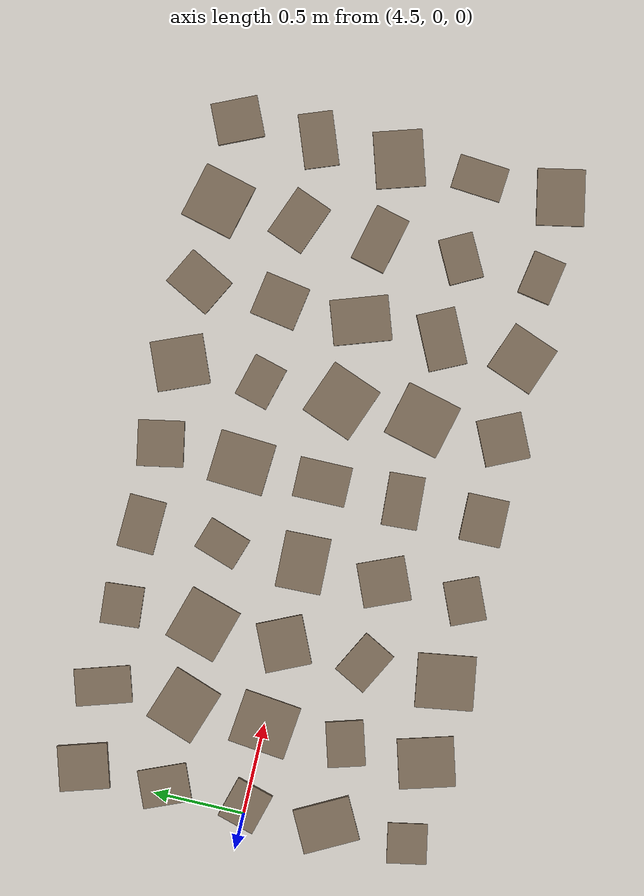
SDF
<sdf version="1.6">
 <world name="default">
  <include><uri>model://sun</uri></include>
  <model name="rough_patch_9_0">
   <static>true</static>
   <pose>4.550 -0.900 0.0027 0 0 0.1925</pose>
   <link name="link">
    <collision name="collision">
     <geometry><box><size>0.219 0.216 0.0054</size></box></geometry>
     <surface>
      <friction><ode><mu>0.8</mu><mu2>0.8</mu2><slip1>0.0</slip1><slip2>0.0</slip2></ode></friction>
      <contact>
       <ode><kp>1000000.0</kp><kd>100.0</kd><max_vel>0.01</max_vel><min_depth>0.001</min_depth></ode>
      </contact>
     </surface>
    </collision>
    <visual name="visual">
     <geometry><box><size>0.219 0.216 0.0054</size></box></geometry>
     <material><ambient>0.38 0.34 0.28 1</ambient><diffuse>0.50 0.43 0.35 1</diffuse></material>
    </visual>
   </link>
  </model>
  <model name="rough_patch_9_1">
   <static>true</static>
   <pose>4.550 -0.450 0.0097 0 0 0.4880</pose>
   <link name="link">
    <collision name="collision">
     <geometry><box><size>0.243 0.311 0.0193</size></box></geometry>
     <surface>
      <friction><ode><mu>0.8</mu><mu2>0.8</mu2><slip1>0.0</slip1><slip2>0.0</slip2></ode></friction>
      <contact>
       <ode><kp>1000000.0</kp><kd>100.0</kd><max_vel>0.01</max_vel><min_depth>0.001</min_depth></ode>
      </contact>
     </surface>
    </collision>
    <visual name="visual">
     <geometry><box><size>0.243 0.311 0.0193</size></box></geometry>
     <material><ambient>0.38 0.34 0.28 1</ambient><diffuse>0.50 0.43 0.35 1</diffuse></material>
    </visual>
   </link>
  </model>
  <model name="rough_patch_9_2">
   <static>true</static>
   <pose>4.550 0.000 0.0097 0 0 -0.2732</pose>
   <link name="link">
    <collision name="collision">
     <geometry><box><size>0.231 0.211 0.0193</size></box></geometry>
     <surface>
      <friction><ode><mu>0.8</mu><mu2>0.8</mu2><slip1>0.0</slip1><slip2>0.0</slip2></ode></friction>
      <contact>
       <ode><kp>1000000.0</kp><kd>100.0</kd><max_vel>0.01</max_vel><min_depth>0.001</min_depth></ode>
      </contact>
     </surface>
    </collision>
    <visual name="visual">
     <geometry><box><size>0.231 0.211 0.0193</size></box></geometry>
     <material><ambient>0.38 0.34 0.28 1</ambient><diffuse>0.50 0.43 0.35 1</diffuse></material>
    </visual>
   </link>
  </model>
  <model name="rough_patch_9_3">
   <static>true</static>
   <pose>4.550 0.450 0.0040 0 0 0.4003</pose>
   <link name="link">
    <collision name="collision">
     <geometry><box><size>0.209 0.267 0.0080</size></box></geometry>
     <surface>
      <friction><ode><mu>0.8</mu><mu2>0.8</mu2><slip1>0.0</slip1><slip2>0.0</slip2></ode></friction>
      <contact>
       <ode><kp>1000000.0</kp><kd>100.0</kd><max_vel>0.01</max_vel><min_depth>0.001</min_depth></ode>
      </contact>
     </surface>
    </collision>
    <visual name="visual">
     <geometry><box><size>0.209 0.267 0.0080</size></box></geometry>
     <material><ambient>0.38 0.34 0.28 1</ambient><diffuse>0.50 0.43 0.35 1</diffuse></material>
    </visual>
   </link>
  </model>
  <model name="rough_patch_9_4">
   <static>true</static>
   <pose>4.550 0.900 0.0088 0 0 0.2996</pose>
   <link name="link">
    <collision name="collision">
     <geometry><box><size>0.247 0.271 0.0176</size></box></geometry>
     <surface>
      <friction><ode><mu>0.8</mu><mu2>0.8</mu2><slip1>0.0</slip1><slip2>0.0</slip2></ode></friction>
      <contact>
       <ode><kp>1000000.0</kp><kd>100.0</kd><max_vel>0.01</max_vel><min_depth>0.001</min_depth></ode>
      </contact>
     </surface>
    </collision>
    <visual name="visual">
     <geometry><box><size>0.247 0.271 0.0176</size></box></geometry>
     <material><ambient>0.38 0.34 0.28 1</ambient><diffuse>0.50 0.43 0.35 1</diffuse></material>
    </visual>
   </link>
  </model>
  <model name="rough_patch_10_0">
   <static>true</static>
   <pose>5.000 -0.900 0.0031 0 0 0.2823</pose>
   <link name="link">
    <collision name="collision">
     <geometry><box><size>0.272 0.307 0.0063</size></box></geometry>
     <surface>
      <friction><ode><mu>0.8</mu><mu2>0.8</mu2><slip1>0.0</slip1><slip2>0.0</slip2></ode></friction>
      <contact>
       <ode><kp>1000000.0</kp><kd>100.0</kd><max_vel>0.01</max_vel><min_depth>0.001</min_depth></ode>
      </contact>
     </surface>
    </collision>
    <visual name="visual">
     <geometry><box><size>0.272 0.307 0.0063</size></box></geometry>
     <material><ambient>0.38 0.34 0.28 1</ambient><diffuse>0.50 0.43 0.35 1</diffuse></material>
    </visual>
   </link>
  </model>
  <model name="rough_patch_10_1">
   <static>true</static>
   <pose>5.000 -0.450 0.0081 0 0 0.2891</pose>
   <link name="link">
    <collision name="collision">
     <geometry><box><size>0.247 0.205 0.0163</size></box></geometry>
     <surface>
      <friction><ode><mu>0.8</mu><mu2>0.8</mu2><slip1>0.0</slip1><slip2>0.0</slip2></ode></friction>
      <contact>
       <ode><kp>1000000.0</kp><kd>100.0</kd><max_vel>0.01</max_vel><min_depth>0.001</min_depth></ode>
      </contact>
     </surface>
    </collision>
    <visual name="visual">
     <geometry><box><size>0.247 0.205 0.0163</size></box></geometry>
     <material><ambient>0.38 0.34 0.28 1</ambient><diffuse>0.50 0.43 0.35 1</diffuse></material>
    </visual>
   </link>
  </model>
  <model name="rough_patch_10_2">
   <static>true</static>
   <pose>5.000 0.000 0.0050 0 0 -0.1042</pose>
   <link name="link">
    <collision name="collision">
     <geometry><box><size>0.292 0.316 0.0100</size></box></geometry>
     <surface>
      <friction><ode><mu>0.8</mu><mu2>0.8</mu2><slip1>0.0</slip1><slip2>0.0</slip2></ode></friction>
      <contact>
       <ode><kp>1000000.0</kp><kd>100.0</kd><max_vel>0.01</max_vel><min_depth>0.001</min_depth></ode>
      </contact>
     </surface>
    </collision>
    <visual name="visual">
     <geometry><box><size>0.292 0.316 0.0100</size></box></geometry>
     <material><ambient>0.38 0.34 0.28 1</ambient><diffuse>0.50 0.43 0.35 1</diffuse></material>
    </visual>
   </link>
  </model>
  <model name="rough_patch_10_3">
   <static>true</static>
   <pose>5.000 0.450 0.0055 0 0 -0.3300</pose>
   <link name="link">
    <collision name="collision">
     <geometry><box><size>0.313 0.281 0.0110</size></box></geometry>
     <surface>
      <friction><ode><mu>0.8</mu><mu2>0.8</mu2><slip1>0.0</slip1><slip2>0.0</slip2></ode></friction>
      <contact>
       <ode><kp>1000000.0</kp><kd>100.0</kd><max_vel>0.01</max_vel><min_depth>0.001</min_depth></ode>
      </contact>
     </surface>
    </collision>
    <visual name="visual">
     <geometry><box><size>0.313 0.281 0.0110</size></box></geometry>
     <material><ambient>0.38 0.34 0.28 1</ambient><diffuse>0.50 0.43 0.35 1</diffuse></material>
    </visual>
   </link>
  </model>
  <model name="rough_patch_10_4">
   <static>true</static>
   <pose>5.000 0.900 0.0035 0 0 0.3065</pose>
   <link name="link">
    <collision name="collision">
     <geometry><box><size>0.201 0.307 0.0069</size></box></geometry>
     <surface>
      <friction><ode><mu>0.8</mu><mu2>0.8</mu2><slip1>0.0</slip1><slip2>0.0</slip2></ode></friction>
      <contact>
       <ode><kp>1000000.0</kp><kd>100.0</kd><max_vel>0.01</max_vel><min_depth>0.001</min_depth></ode>
      </contact>
     </surface>
    </collision>
    <visual name="visual">
     <geometry><box><size>0.201 0.307 0.0069</size></box></geometry>
     <material><ambient>0.38 0.34 0.28 1</ambient><diffuse>0.50 0.43 0.35 1</diffuse></material>
    </visual>
   </link>
  </model>
  <model name="rough_patch_11_0">
   <static>true</static>
   <pose>5.450 -0.900 0.0036 0 0 0.1573</pose>
   <link name="link">
    <collision name="collision">
     <geometry><box><size>0.296 0.317 0.0072</size></box></geometry>
     <surface>
      <friction><ode><mu>0.8</mu><mu2>0.8</mu2><slip1>0.0</slip1><slip2>0.0</slip2></ode></friction>
      <contact>
       <ode><kp>1000000.0</kp><kd>100.0</kd><max_vel>0.01</max_vel><min_depth>0.001</min_depth></ode>
      </contact>
     </surface>
    </collision>
    <visual name="visual">
     <geometry><box><size>0.296 0.317 0.0072</size></box></geometry>
     <material><ambient>0.38 0.34 0.28 1</ambient><diffuse>0.50 0.43 0.35 1</diffuse></material>
    </visual>
   </link>
  </model>
  <model name="rough_patch_11_1">
   <static>true</static>
   <pose>5.450 -0.450 0.0051 0 0 -0.4858</pose>
   <link name="link">
    <collision name="collision">
     <geometry><box><size>0.257 0.198 0.0103</size></box></geometry>
     <surface>
      <friction><ode><mu>0.8</mu><mu2>0.8</mu2><slip1>0.0</slip1><slip2>0.0</slip2></ode></friction>
      <contact>
       <ode><kp>1000000.0</kp><kd>100.0</kd><max_vel>0.01</max_vel><min_depth>0.001</min_depth></ode>
      </contact>
     </surface>
    </collision>
    <visual name="visual">
     <geometry><box><size>0.257 0.198 0.0103</size></box></geometry>
     <material><ambient>0.38 0.34 0.28 1</ambient><diffuse>0.50 0.43 0.35 1</diffuse></material>
    </visual>
   </link>
  </model>
  <model name="rough_patch_11_2">
   <static>true</static>
   <pose>5.450 0.000 0.0098 0 0 0.4336</pose>
   <link name="link">
    <collision name="collision">
     <geometry><box><size>0.271 0.254 0.0196</size></box></geometry>
     <surface>
      <friction><ode><mu>0.8</mu><mu2>0.8</mu2><slip1>0.0</slip1><slip2>0.0</slip2></ode></friction>
      <contact>
       <ode><kp>1000000.0</kp><kd>100.0</kd><max_vel>0.01</max_vel><min_depth>0.001</min_depth></ode>
      </contact>
     </surface>
    </collision>
    <visual name="visual">
     <geometry><box><size>0.271 0.254 0.0196</size></box></geometry>
     <material><ambient>0.38 0.34 0.28 1</ambient><diffuse>0.50 0.43 0.35 1</diffuse></material>
    </visual>
   </link>
  </model>
  <model name="rough_patch_11_3">
   <static>true</static>
   <pose>5.450 0.450 0.0058 0 0 -0.2890</pose>
   <link name="link">
    <collision name="collision">
     <geometry><box><size>0.302 0.296 0.0115</size></box></geometry>
     <surface>
      <friction><ode><mu>0.8</mu><mu2>0.8</mu2><slip1>0.0</slip1><slip2>0.0</slip2></ode></friction>
      <contact>
       <ode><kp>1000000.0</kp><kd>100.0</kd><max_vel>0.01</max_vel><min_depth>0.001</min_depth></ode>
      </contact>
     </surface>
    </collision>
    <visual name="visual">
     <geometry><box><size>0.302 0.296 0.0115</size></box></geometry>
     <material><ambient>0.38 0.34 0.28 1</ambient><diffuse>0.50 0.43 0.35 1</diffuse></material>
    </visual>
   </link>
  </model>
  <model name="rough_patch_11_4">
   <static>true</static>
   <pose>5.450 0.900 0.0044 0 0 0.0864</pose>
   <link name="link">
    <collision name="collision">
     <geometry><box><size>0.221 0.214 0.0088</size></box></geometry>
     <surface>
      <friction><ode><mu>0.8</mu><mu2>0.8</mu2><slip1>0.0</slip1><slip2>0.0</slip2></ode></friction>
      <contact>
       <ode><kp>1000000.0</kp><kd>100.0</kd><max_vel>0.01</max_vel><min_depth>0.001</min_depth></ode>
      </contact>
     </surface>
    </collision>
    <visual name="visual">
     <geometry><box><size>0.221 0.214 0.0088</size></box></geometry>
     <material><ambient>0.38 0.34 0.28 1</ambient><diffuse>0.50 0.43 0.35 1</diffuse></material>
    </visual>
   </link>
  </model>
  <model name="rough_patch_12_0">
   <static>true</static>
   <pose>5.900 -0.900 0.0044 0 0 0.4100</pose>
   <link name="link">
    <collision name="collision">
     <geometry><box><size>0.239 0.198 0.0089</size></box></geometry>
     <surface>
      <friction><ode><mu>0.8</mu><mu2>0.8</mu2><slip1>0.0</slip1><slip2>0.0</slip2></ode></friction>
      <contact>
       <ode><kp>1000000.0</kp><kd>100.0</kd><max_vel>0.01</max_vel><min_depth>0.001</min_depth></ode>
      </contact>
     </surface>
    </collision>
    <visual name="visual">
     <geometry><box><size>0.239 0.198 0.0089</size></box></geometry>
     <material><ambient>0.38 0.34 0.28 1</ambient><diffuse>0.50 0.43 0.35 1</diffuse></material>
    </visual>
   </link>
  </model>
  <model name="rough_patch_12_1">
   <static>true</static>
   <pose>5.900 -0.450 0.0052 0 0 0.4043</pose>
   <link name="link">
    <collision name="collision">
     <geometry><box><size>0.244 0.262 0.0103</size></box></geometry>
     <surface>
      <friction><ode><mu>0.8</mu><mu2>0.8</mu2><slip1>0.0</slip1><slip2>0.0</slip2></ode></friction>
      <contact>
       <ode><kp>1000000.0</kp><kd>100.0</kd><max_vel>0.01</max_vel><min_depth>0.001</min_depth></ode>
      </contact>
     </surface>
    </collision>
    <visual name="visual">
     <geometry><box><size>0.244 0.262 0.0103</size></box></geometry>
     <material><ambient>0.38 0.34 0.28 1</ambient><diffuse>0.50 0.43 0.35 1</diffuse></material>
    </visual>
   </link>
  </model>
  <model name="rough_patch_12_2">
   <static>true</static>
   <pose>5.900 0.000 0.0057 0 0 0.0318</pose>
   <link name="link">
    <collision name="collision">
     <geometry><box><size>0.308 0.250 0.0113</size></box></geometry>
     <surface>
      <friction><ode><mu>0.8</mu><mu2>0.8</mu2><slip1>0.0</slip1><slip2>0.0</slip2></ode></friction>
      <contact>
       <ode><kp>1000000.0</kp><kd>100.0</kd><max_vel>0.01</max_vel><min_depth>0.001</min_depth></ode>
      </contact>
     </surface>
    </collision>
    <visual name="visual">
     <geometry><box><size>0.308 0.250 0.0113</size></box></geometry>
     <material><ambient>0.38 0.34 0.28 1</ambient><diffuse>0.50 0.43 0.35 1</diffuse></material>
    </visual>
   </link>
  </model>
  <model name="rough_patch_12_3">
   <static>true</static>
   <pose>5.900 0.450 0.0064 0 0 -0.3169</pose>
   <link name="link">
    <collision name="collision">
     <geometry><box><size>0.183 0.242 0.0129</size></box></geometry>
     <surface>
      <friction><ode><mu>0.8</mu><mu2>0.8</mu2><slip1>0.0</slip1><slip2>0.0</slip2></ode></friction>
      <contact>
       <ode><kp>1000000.0</kp><kd>100.0</kd><max_vel>0.01</max_vel><min_depth>0.001</min_depth></ode>
      </contact>
     </surface>
    </collision>
    <visual name="visual">
     <geometry><box><size>0.183 0.242 0.0129</size></box></geometry>
     <material><ambient>0.38 0.34 0.28 1</ambient><diffuse>0.50 0.43 0.35 1</diffuse></material>
    </visual>
   </link>
  </model>
  <model name="rough_patch_12_4">
   <static>true</static>
   <pose>5.900 0.900 0.0025 0 0 -0.0265</pose>
   <link name="link">
    <collision name="collision">
     <geometry><box><size>0.292 0.204 0.0051</size></box></geometry>
     <surface>
      <friction><ode><mu>0.8</mu><mu2>0.8</mu2><slip1>0.0</slip1><slip2>0.0</slip2></ode></friction>
      <contact>
       <ode><kp>1000000.0</kp><kd>100.0</kd><max_vel>0.01</max_vel><min_depth>0.001</min_depth></ode>
      </contact>
     </surface>
    </collision>
    <visual name="visual">
     <geometry><box><size>0.292 0.204 0.0051</size></box></geometry>
     <material><ambient>0.38 0.34 0.28 1</ambient><diffuse>0.50 0.43 0.35 1</diffuse></material>
    </visual>
   </link>
  </model>
  <model name="rough_patch_13_0">
   <static>true</static>
   <pose>6.350 -0.900 0.0079 0 0 0.0183</pose>
   <link name="link">
    <collision name="collision">
     <geometry><box><size>0.258 0.226 0.0159</size></box></geometry>
     <surface>
      <friction><ode><mu>0.8</mu><mu2>0.8</mu2><slip1>0.0</slip1><slip2>0.0</slip2></ode></friction>
      <contact>
       <ode><kp>1000000.0</kp><kd>100.0</kd><max_vel>0.01</max_vel><min_depth>0.001</min_depth></ode>
      </contact>
     </surface>
    </collision>
    <visual name="visual">
     <geometry><box><size>0.258 0.226 0.0159</size></box></geometry>
     <material><ambient>0.38 0.34 0.28 1</ambient><diffuse>0.50 0.43 0.35 1</diffuse></material>
    </visual>
   </link>
  </model>
  <model name="rough_patch_13_1">
   <static>true</static>
   <pose>6.350 -0.450 0.0067 0 0 0.0603</pose>
   <link name="link">
    <collision name="collision">
     <geometry><box><size>0.290 0.195 0.0133</size></box></geometry>
     <surface>
      <friction><ode><mu>0.8</mu><mu2>0.8</mu2><slip1>0.0</slip1><slip2>0.0</slip2></ode></friction>
      <contact>
       <ode><kp>1000000.0</kp><kd>100.0</kd><max_vel>0.01</max_vel><min_depth>0.001</min_depth></ode>
      </contact>
     </surface>
    </collision>
    <visual name="visual">
     <geometry><box><size>0.290 0.195 0.0133</size></box></geometry>
     <material><ambient>0.38 0.34 0.28 1</ambient><diffuse>0.50 0.43 0.35 1</diffuse></material>
    </visual>
   </link>
  </model>
  <model name="rough_patch_13_2">
   <static>true</static>
   <pose>6.350 0.000 0.0044 0 0 0.0077</pose>
   <link name="link">
    <collision name="collision">
     <geometry><box><size>0.219 0.288 0.0087</size></box></geometry>
     <surface>
      <friction><ode><mu>0.8</mu><mu2>0.8</mu2><slip1>0.0</slip1><slip2>0.0</slip2></ode></friction>
      <contact>
       <ode><kp>1000000.0</kp><kd>100.0</kd><max_vel>0.01</max_vel><min_depth>0.001</min_depth></ode>
      </contact>
     </surface>
    </collision>
    <visual name="visual">
     <geometry><box><size>0.219 0.288 0.0087</size></box></geometry>
     <material><ambient>0.38 0.34 0.28 1</ambient><diffuse>0.50 0.43 0.35 1</diffuse></material>
    </visual>
   </link>
  </model>
  <model name="rough_patch_13_3">
   <static>true</static>
   <pose>6.350 0.450 0.0067 0 0 -0.0568</pose>
   <link name="link">
    <collision name="collision">
     <geometry><box><size>0.286 0.308 0.0134</size></box></geometry>
     <surface>
      <friction><ode><mu>0.8</mu><mu2>0.8</mu2><slip1>0.0</slip1><slip2>0.0</slip2></ode></friction>
      <contact>
       <ode><kp>1000000.0</kp><kd>100.0</kd><max_vel>0.01</max_vel><min_depth>0.001</min_depth></ode>
      </contact>
     </surface>
    </collision>
    <visual name="visual">
     <geometry><box><size>0.286 0.308 0.0134</size></box></geometry>
     <material><ambient>0.38 0.34 0.28 1</ambient><diffuse>0.50 0.43 0.35 1</diffuse></material>
    </visual>
   </link>
  </model>
  <model name="rough_patch_13_4">
   <static>true</static>
   <pose>6.350 0.900 0.0071 0 0 0.1927</pose>
   <link name="link">
    <collision name="collision">
     <geometry><box><size>0.251 0.252 0.0142</size></box></geometry>
     <surface>
      <friction><ode><mu>0.8</mu><mu2>0.8</mu2><slip1>0.0</slip1><slip2>0.0</slip2></ode></friction>
      <contact>
       <ode><kp>1000000.0</kp><kd>100.0</kd><max_vel>0.01</max_vel><min_depth>0.001</min_depth></ode>
      </contact>
     </surface>
    </collision>
    <visual name="visual">
     <geometry><box><size>0.251 0.252 0.0142</size></box></geometry>
     <material><ambient>0.38 0.34 0.28 1</ambient><diffuse>0.50 0.43 0.35 1</diffuse></material>
    </visual>
   </link>
  </model>
  <model name="rough_patch_14_0">
   <static>true</static>
   <pose>6.800 -0.900 0.0059 0 0 0.4415</pose>
   <link name="link">
    <collision name="collision">
     <geometry><box><size>0.255 0.247 0.0118</size></box></geometry>
     <surface>
      <friction><ode><mu>0.8</mu><mu2>0.8</mu2><slip1>0.0</slip1><slip2>0.0</slip2></ode></friction>
      <contact>
       <ode><kp>1000000.0</kp><kd>100.0</kd><max_vel>0.01</max_vel><min_depth>0.001</min_depth></ode>
      </contact>
     </surface>
    </collision>
    <visual name="visual">
     <geometry><box><size>0.255 0.247 0.0118</size></box></geometry>
     <material><ambient>0.38 0.34 0.28 1</ambient><diffuse>0.50 0.43 0.35 1</diffuse></material>
    </visual>
   </link>
  </model>
  <model name="rough_patch_14_1">
   <static>true</static>
   <pose>6.800 -0.450 0.0077 0 0 -0.2404</pose>
   <link name="link">
    <collision name="collision">
     <geometry><box><size>0.303 0.312 0.0155</size></box></geometry>
     <surface>
      <friction><ode><mu>0.8</mu><mu2>0.8</mu2><slip1>0.0</slip1><slip2>0.0</slip2></ode></friction>
      <contact>
       <ode><kp>1000000.0</kp><kd>100.0</kd><max_vel>0.01</max_vel><min_depth>0.001</min_depth></ode>
      </contact>
     </surface>
    </collision>
    <visual name="visual">
     <geometry><box><size>0.303 0.312 0.0155</size></box></geometry>
     <material><ambient>0.38 0.34 0.28 1</ambient><diffuse>0.50 0.43 0.35 1</diffuse></material>
    </visual>
   </link>
  </model>
  <model name="rough_patch_14_2">
   <static>true</static>
   <pose>6.800 0.000 0.0067 0 0 -0.3629</pose>
   <link name="link">
    <collision name="collision">
     <geometry><box><size>0.312 0.298 0.0134</size></box></geometry>
     <surface>
      <friction><ode><mu>0.8</mu><mu2>0.8</mu2><slip1>0.0</slip1><slip2>0.0</slip2></ode></friction>
      <contact>
       <ode><kp>1000000.0</kp><kd>100.0</kd><max_vel>0.01</max_vel><min_depth>0.001</min_depth></ode>
      </contact>
     </surface>
    </collision>
    <visual name="visual">
     <geometry><box><size>0.312 0.298 0.0134</size></box></geometry>
     <material><ambient>0.38 0.34 0.28 1</ambient><diffuse>0.50 0.43 0.35 1</diffuse></material>
    </visual>
   </link>
  </model>
  <model name="rough_patch_14_3">
   <static>true</static>
   <pose>6.800 0.450 0.0034 0 0 -0.2594</pose>
   <link name="link">
    <collision name="collision">
     <geometry><box><size>0.242 0.190 0.0068</size></box></geometry>
     <surface>
      <friction><ode><mu>0.8</mu><mu2>0.8</mu2><slip1>0.0</slip1><slip2>0.0</slip2></ode></friction>
      <contact>
       <ode><kp>1000000.0</kp><kd>100.0</kd><max_vel>0.01</max_vel><min_depth>0.001</min_depth></ode>
      </contact>
     </surface>
    </collision>
    <visual name="visual">
     <geometry><box><size>0.242 0.190 0.0068</size></box></geometry>
     <material><ambient>0.38 0.34 0.28 1</ambient><diffuse>0.50 0.43 0.35 1</diffuse></material>
    </visual>
   </link>
  </model>
  <model name="rough_patch_14_4">
   <static>true</static>
   <pose>6.800 0.900 0.0030 0 0 0.3970</pose>
   <link name="link">
    <collision name="collision">
     <geometry><box><size>0.274 0.290 0.0061</size></box></geometry>
     <surface>
      <friction><ode><mu>0.8</mu><mu2>0.8</mu2><slip1>0.0</slip1><slip2>0.0</slip2></ode></friction>
      <contact>
       <ode><kp>1000000.0</kp><kd>100.0</kd><max_vel>0.01</max_vel><min_depth>0.001</min_depth></ode>
      </contact>
     </surface>
    </collision>
    <visual name="visual">
     <geometry><box><size>0.274 0.290 0.0061</size></box></geometry>
     <material><ambient>0.38 0.34 0.28 1</ambient><diffuse>0.50 0.43 0.35 1</diffuse></material>
    </visual>
   </link>
  </model>
  <model name="rough_patch_15_0">
   <static>true</static>
   <pose>7.250 -0.900 0.0037 0 0 -0.3570</pose>
   <link name="link">
    <collision name="collision">
     <geometry><box><size>0.280 0.272 0.0073</size></box></geometry>
     <surface>
      <friction><ode><mu>0.8</mu><mu2>0.8</mu2><slip1>0.0</slip1><slip2>0.0</slip2></ode></friction>
      <contact>
       <ode><kp>1000000.0</kp><kd>100.0</kd><max_vel>0.01</max_vel><min_depth>0.001</min_depth></ode>
      </contact>
     </surface>
    </collision>
    <visual name="visual">
     <geometry><box><size>0.280 0.272 0.0073</size></box></geometry>
     <material><ambient>0.38 0.34 0.28 1</ambient><diffuse>0.50 0.43 0.35 1</diffuse></material>
    </visual>
   </link>
  </model>
  <model name="rough_patch_15_1">
   <static>true</static>
   <pose>7.250 -0.450 0.0091 0 0 0.4525</pose>
   <link name="link">
    <collision name="collision">
     <geometry><box><size>0.315 0.211 0.0182</size></box></geometry>
     <surface>
      <friction><ode><mu>0.8</mu><mu2>0.8</mu2><slip1>0.0</slip1><slip2>0.0</slip2></ode></friction>
      <contact>
       <ode><kp>1000000.0</kp><kd>100.0</kd><max_vel>0.01</max_vel><min_depth>0.001</min_depth></ode>
      </contact>
     </surface>
    </collision>
    <visual name="visual">
     <geometry><box><size>0.315 0.211 0.0182</size></box></geometry>
     <material><ambient>0.38 0.34 0.28 1</ambient><diffuse>0.50 0.43 0.35 1</diffuse></material>
    </visual>
   </link>
  </model>
  <model name="rough_patch_15_2">
   <static>true</static>
   <pose>7.250 0.000 0.0055 0 0 0.3324</pose>
   <link name="link">
    <collision name="collision">
     <geometry><box><size>0.248 0.319 0.0110</size></box></geometry>
     <surface>
      <friction><ode><mu>0.8</mu><mu2>0.8</mu2><slip1>0.0</slip1><slip2>0.0</slip2></ode></friction>
      <contact>
       <ode><kp>1000000.0</kp><kd>100.0</kd><max_vel>0.01</max_vel><min_depth>0.001</min_depth></ode>
      </contact>
     </surface>
    </collision>
    <visual name="visual">
     <geometry><box><size>0.248 0.319 0.0110</size></box></geometry>
     <material><ambient>0.38 0.34 0.28 1</ambient><diffuse>0.50 0.43 0.35 1</diffuse></material>
    </visual>
   </link>
  </model>
  <model name="rough_patch_15_3">
   <static>true</static>
   <pose>7.250 0.450 0.0037 0 0 -0.1609</pose>
   <link name="link">
    <collision name="collision">
     <geometry><box><size>0.240 0.252 0.0074</size></box></geometry>
     <surface>
      <friction><ode><mu>0.8</mu><mu2>0.8</mu2><slip1>0.0</slip1><slip2>0.0</slip2></ode></friction>
      <contact>
       <ode><kp>1000000.0</kp><kd>100.0</kd><max_vel>0.01</max_vel><min_depth>0.001</min_depth></ode>
      </contact>
     </surface>
    </collision>
    <visual name="visual">
     <geometry><box><size>0.240 0.252 0.0074</size></box></geometry>
     <material><ambient>0.38 0.34 0.28 1</ambient><diffuse>0.50 0.43 0.35 1</diffuse></material>
    </visual>
   </link>
  </model>
  <model name="rough_patch_15_4">
   <static>true</static>
   <pose>7.250 0.900 0.0040 0 0 -0.4805</pose>
   <link name="link">
    <collision name="collision">
     <geometry><box><size>0.225 0.281 0.0079</size></box></geometry>
     <surface>
      <friction><ode><mu>0.8</mu><mu2>0.8</mu2><slip1>0.0</slip1><slip2>0.0</slip2></ode></friction>
      <contact>
       <ode><kp>1000000.0</kp><kd>100.0</kd><max_vel>0.01</max_vel><min_depth>0.001</min_depth></ode>
      </contact>
     </surface>
    </collision>
    <visual name="visual">
     <geometry><box><size>0.225 0.281 0.0079</size></box></geometry>
     <material><ambient>0.38 0.34 0.28 1</ambient><diffuse>0.50 0.43 0.35 1</diffuse></material>
    </visual>
   </link>
  </model>
  <model name="rough_patch_16_0">
   <static>true</static>
   <pose>7.700 -0.900 0.0067 0 0 -0.1685</pose>
   <link name="link">
    <collision name="collision">
     <geometry><box><size>0.242 0.183 0.0133</size></box></geometry>
     <surface>
      <friction><ode><mu>0.8</mu><mu2>0.8</mu2><slip1>0.0</slip1><slip2>0.0</slip2></ode></friction>
      <contact>
       <ode><kp>1000000.0</kp><kd>100.0</kd><max_vel>0.01</max_vel><min_depth>0.001</min_depth></ode>
      </contact>
     </surface>
    </collision>
    <visual name="visual">
     <geometry><box><size>0.242 0.183 0.0133</size></box></geometry>
     <material><ambient>0.38 0.34 0.28 1</ambient><diffuse>0.50 0.43 0.35 1</diffuse></material>
    </visual>
   </link>
  </model>
  <model name="rough_patch_16_1">
   <static>true</static>
   <pose>7.700 -0.450 0.0072 0 0 0.4851</pose>
   <link name="link">
    <collision name="collision">
     <geometry><box><size>0.252 0.189 0.0144</size></box></geometry>
     <surface>
      <friction><ode><mu>0.8</mu><mu2>0.8</mu2><slip1>0.0</slip1><slip2>0.0</slip2></ode></friction>
      <contact>
       <ode><kp>1000000.0</kp><kd>100.0</kd><max_vel>0.01</max_vel><min_depth>0.001</min_depth></ode>
      </contact>
     </surface>
    </collision>
    <visual name="visual">
     <geometry><box><size>0.252 0.189 0.0144</size></box></geometry>
     <material><ambient>0.38 0.34 0.28 1</ambient><diffuse>0.50 0.43 0.35 1</diffuse></material>
    </visual>
   </link>
  </model>
  <model name="rough_patch_16_2">
   <static>true</static>
   <pose>7.700 0.000 0.0084 0 0 -0.2344</pose>
   <link name="link">
    <collision name="collision">
     <geometry><box><size>0.316 0.195 0.0168</size></box></geometry>
     <surface>
      <friction><ode><mu>0.8</mu><mu2>0.8</mu2><slip1>0.0</slip1><slip2>0.0</slip2></ode></friction>
      <contact>
       <ode><kp>1000000.0</kp><kd>100.0</kd><max_vel>0.01</max_vel><min_depth>0.001</min_depth></ode>
      </contact>
     </surface>
    </collision>
    <visual name="visual">
     <geometry><box><size>0.316 0.195 0.0168</size></box></geometry>
     <material><ambient>0.38 0.34 0.28 1</ambient><diffuse>0.50 0.43 0.35 1</diffuse></material>
    </visual>
   </link>
  </model>
  <model name="rough_patch_16_3">
   <static>true</static>
   <pose>7.700 0.450 0.0028 0 0 -0.3704</pose>
   <link name="link">
    <collision name="collision">
     <geometry><box><size>0.289 0.218 0.0056</size></box></geometry>
     <surface>
      <friction><ode><mu>0.8</mu><mu2>0.8</mu2><slip1>0.0</slip1><slip2>0.0</slip2></ode></friction>
      <contact>
       <ode><kp>1000000.0</kp><kd>100.0</kd><max_vel>0.01</max_vel><min_depth>0.001</min_depth></ode>
      </contact>
     </surface>
    </collision>
    <visual name="visual">
     <geometry><box><size>0.289 0.218 0.0056</size></box></geometry>
     <material><ambient>0.38 0.34 0.28 1</ambient><diffuse>0.50 0.43 0.35 1</diffuse></material>
    </visual>
   </link>
  </model>
  <model name="rough_patch_16_4">
   <static>true</static>
   <pose>7.700 0.900 0.0057 0 0 -0.2414</pose>
   <link name="link">
    <collision name="collision">
     <geometry><box><size>0.308 0.295 0.0113</size></box></geometry>
     <surface>
      <friction><ode><mu>0.8</mu><mu2>0.8</mu2><slip1>0.0</slip1><slip2>0.0</slip2></ode></friction>
      <contact>
       <ode><kp>1000000.0</kp><kd>100.0</kd><max_vel>0.01</max_vel><min_depth>0.001</min_depth></ode>
      </contact>
     </surface>
    </collision>
    <visual name="visual">
     <geometry><box><size>0.308 0.295 0.0113</size></box></geometry>
     <material><ambient>0.38 0.34 0.28 1</ambient><diffuse>0.50 0.43 0.35 1</diffuse></material>
    </visual>
   </link>
  </model>
  <model name="rough_patch_17_0">
   <static>true</static>
   <pose>8.150 -0.900 0.0036 0 0 0.2004</pose>
   <link name="link">
    <collision name="collision">
     <geometry><box><size>0.309 0.260 0.0072</size></box></geometry>
     <surface>
      <friction><ode><mu>0.8</mu><mu2>0.8</mu2><slip1>0.0</slip1><slip2>0.0</slip2></ode></friction>
      <contact>
       <ode><kp>1000000.0</kp><kd>100.0</kd><max_vel>0.01</max_vel><min_depth>0.001</min_depth></ode>
      </contact>
     </surface>
    </collision>
    <visual name="visual">
     <geometry><box><size>0.309 0.260 0.0072</size></box></geometry>
     <material><ambient>0.38 0.34 0.28 1</ambient><diffuse>0.50 0.43 0.35 1</diffuse></material>
    </visual>
   </link>
  </model>
  <model name="rough_patch_17_1">
   <static>true</static>
   <pose>8.150 -0.450 0.0032 0 0 -0.0747</pose>
   <link name="link">
    <collision name="collision">
     <geometry><box><size>0.188 0.276 0.0063</size></box></geometry>
     <surface>
      <friction><ode><mu>0.8</mu><mu2>0.8</mu2><slip1>0.0</slip1><slip2>0.0</slip2></ode></friction>
      <contact>
       <ode><kp>1000000.0</kp><kd>100.0</kd><max_vel>0.01</max_vel><min_depth>0.001</min_depth></ode>
      </contact>
     </surface>
    </collision>
    <visual name="visual">
     <geometry><box><size>0.188 0.276 0.0063</size></box></geometry>
     <material><ambient>0.38 0.34 0.28 1</ambient><diffuse>0.50 0.43 0.35 1</diffuse></material>
    </visual>
   </link>
  </model>
  <model name="rough_patch_17_2">
   <static>true</static>
   <pose>8.150 0.000 0.0030 0 0 0.3016</pose>
   <link name="link">
    <collision name="collision">
     <geometry><box><size>0.311 0.269 0.0061</size></box></geometry>
     <surface>
      <friction><ode><mu>0.8</mu><mu2>0.8</mu2><slip1>0.0</slip1><slip2>0.0</slip2></ode></friction>
      <contact>
       <ode><kp>1000000.0</kp><kd>100.0</kd><max_vel>0.01</max_vel><min_depth>0.001</min_depth></ode>
      </contact>
     </surface>
    </collision>
    <visual name="visual">
     <geometry><box><size>0.311 0.269 0.0061</size></box></geometry>
     <material><ambient>0.38 0.34 0.28 1</ambient><diffuse>0.50 0.43 0.35 1</diffuse></material>
    </visual>
   </link>
  </model>
  <model name="rough_patch_17_3">
   <static>true</static>
   <pose>8.150 0.450 0.0031 0 0 0.3628</pose>
   <link name="link">
    <collision name="collision">
     <geometry><box><size>0.300 0.189 0.0063</size></box></geometry>
     <surface>
      <friction><ode><mu>0.8</mu><mu2>0.8</mu2><slip1>0.0</slip1><slip2>0.0</slip2></ode></friction>
      <contact>
       <ode><kp>1000000.0</kp><kd>100.0</kd><max_vel>0.01</max_vel><min_depth>0.001</min_depth></ode>
      </contact>
     </surface>
    </collision>
    <visual name="visual">
     <geometry><box><size>0.300 0.189 0.0063</size></box></geometry>
     <material><ambient>0.38 0.34 0.28 1</ambient><diffuse>0.50 0.43 0.35 1</diffuse></material>
    </visual>
   </link>
  </model>
  <model name="rough_patch_17_4">
   <static>true</static>
   <pose>8.150 0.900 0.0059 0 0 0.4267</pose>
   <link name="link">
    <collision name="collision">
     <geometry><box><size>0.227 0.257 0.0118</size></box></geometry>
     <surface>
      <friction><ode><mu>0.8</mu><mu2>0.8</mu2><slip1>0.0</slip1><slip2>0.0</slip2></ode></friction>
      <contact>
       <ode><kp>1000000.0</kp><kd>100.0</kd><max_vel>0.01</max_vel><min_depth>0.001</min_depth></ode>
      </contact>
     </surface>
    </collision>
    <visual name="visual">
     <geometry><box><size>0.227 0.257 0.0118</size></box></geometry>
     <material><ambient>0.38 0.34 0.28 1</ambient><diffuse>0.50 0.43 0.35 1</diffuse></material>
    </visual>
   </link>
  </model>
 </world>
</sdf>
